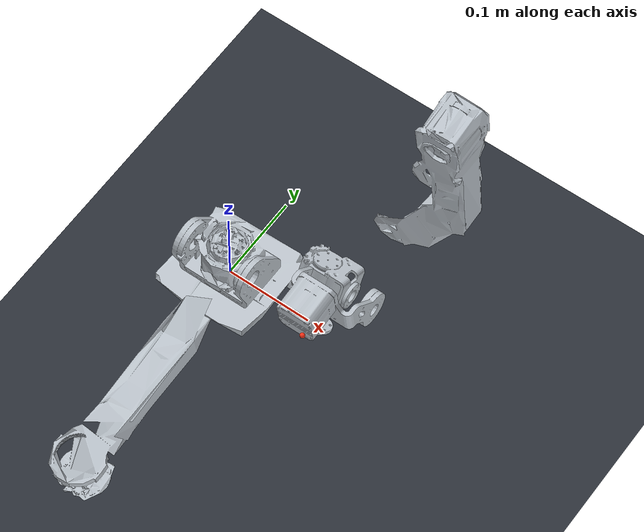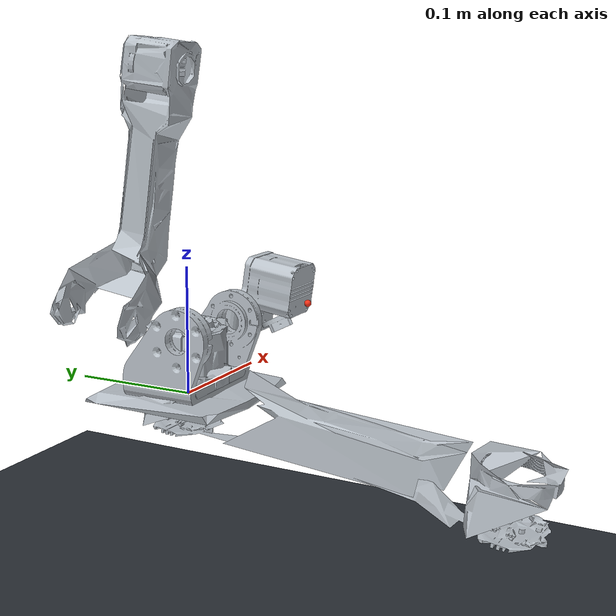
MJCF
<mujoco model="custom_tool4_v1_free_space">
  <compiler angle="radian" inertiafromgeom="false" fusestatic="false" />
  <option timestep="0.001" gravity="0 0 -9.8100000000000005" integrator="implicitfast" />
  <asset>
    <mesh name="base_link" file="../../inputs/processed/meshes/visual/base_link.STL" />
    <mesh name="Link1" file="../../inputs/processed/meshes/visual/Link1.STL" />
    <mesh name="Link2" file="../../inputs/processed/meshes/visual/Link2.STL" />
    <mesh name="Link3" file="../../inputs/processed/meshes/visual/Link3.STL" />
    <mesh name="Link4" file="../../inputs/processed/meshes/visual/Link4.STL" />
    <mesh name="Link5" file="../../inputs/processed/meshes/visual/Link5.STL" />
    <mesh name="Link6" file="../../inputs/processed/meshes/visual/Link6.STL" />
  </asset>
  <worldbody>
    <light pos="0 -1 2" dir="0 0 -1" />
    <geom name="display_floor" type="plane" pos="0 0 -0.22" size="1 1 .01" rgba=".17 .19 .22 1" contype="0" conaffinity="0" />
    <body name="base_link" pos="0 0 0" quat="1 0 0 0">
      <inertial pos="0.0049880381758916799 0.0067405566768687902 -0.073436412944336907" mass="2.02743205550244" fullinertia="0.00301415778826916 0.0043371096763832103 0.00647014029510125 0.00014597451074660199 -8.6669472825640403e-06 -7.2772841433809602e-06" />
      <geom name="visual_base_link" type="mesh" mesh="base_link" contype="0" conaffinity="0" group="1" rgba=".74 .77 .8 1" pos="0 0 0" quat="1 0 0 0" />
      <body name="Link1" pos="0 0 0" quat="-0.70710548251123628 0 0 0.70710807985947355">
        <inertial pos="0.00080175522902964402 0.0089345228227401298 -0.013409982856259901" mass="0.306774615937381" fullinertia="0.00011855149612640801 0.00016275104535737599 0.00014665067559906201 5.0683396447245101e-08 4.2698237358140097e-08 2.1569755740945602e-06" />
        <geom name="visual_Link1" type="mesh" mesh="Link1" contype="0" conaffinity="0" group="1" rgba=".74 .77 .8 1" pos="0 0 0" quat="1 0 0 0" />
        <joint name="Joint1" type="hinge" axis="0 0 1" limited="true" range="-3.14 3.14" damping="0" frictionloss="0" armature="0" />
        <body name="Link2" pos="0 0 0" quat="-0.0493292480220755 -0.049323884793688141 0.70538569103490145 -0.70538273764081449">
          <inertial pos="0.129699536412927 0.000214353234915809 -0.010843386770700099" mass="0.721759057107543" fullinertia="0.00034589074277047703 0.00153215070496463 0.0017162895634722599 -2.88777578221709e-06 -2.4532753118774698e-05 4.7036069603608098e-07" />
          <geom name="visual_Link2" type="mesh" mesh="Link2" contype="0" conaffinity="0" group="1" rgba=".74 .77 .8 1" pos="0 0 0" quat="1 0 0 0" />
          <joint name="Joint2" type="hinge" axis="0 0 -1" limited="true" range="-3.14 3.14" damping="0" frictionloss="0" armature="0" />
          <body name="Link3" pos="0.17100000000000001 0 -0.11285000000000001" quat="-2.5973434669646147e-06 -0.70710548250646599 0.70710807985470336 2.5973530075574148e-06">
            <inertial pos="-0.00033029347703261702 -0.0080478814196509006 -0.0071932839505722502" mass="0.420117391139394" fullinertia="0.00024841243532890199 0.00033284842346646698 0.00020086014059134599 7.3145128594035301e-07 -2.1760998000211101e-06 -1.5279110856018799e-05" />
            <geom name="visual_Link3" type="mesh" mesh="Link3" contype="0" conaffinity="0" group="1" rgba=".74 .77 .8 1" pos="0 0 0" quat="1 0 0 0" />
            <joint name="Joint3" type="hinge" axis="0 0 1" limited="true" range="-3.14 3.14" damping="0" frictionloss="0" armature="0" />
            <body name="Link4" pos="0 0.1235 0" quat="-0.70710548251123628 0.70710807985947355 0 0">
              <inertial pos="-0.0030222491477731 -0.010701110797292201 -0.027946367813552801" mass="0.50785106458491" fullinertia="0.000375005935526406 0.00048199678947339199 0.00026126560559408302 6.6706453189151704e-06 -5.8328284935138799e-05 -2.08888964797331e-05" />
              <geom name="visual_Link4" type="mesh" mesh="Link4" contype="0" conaffinity="0" group="1" rgba=".74 .77 .8 1" pos="0 0 0" quat="1 0 0 0" />
              <joint name="Joint4" type="hinge" axis="0 0 1" limited="true" range="-3.14 3.14" damping="0" frictionloss="0" armature="0" />
              <body name="Link5" pos="0 -0.01 0" quat="0.67437797838336755 0.6743804555165489 0.21263232508019675 -0.21263310612377287">
                <inertial pos="0.00037565982886078603 0.059453843932993397 -0.0035337801585084401" mass="0.363031251058654" fullinertia="0.00017418530556987199 0.00022823810930779799 0.00017511053383909299 3.7029798697673299e-07 2.7870653026132299e-06 1.44896439039514e-05" />
                <geom name="visual_Link5" type="mesh" mesh="Link5" contype="0" conaffinity="0" group="1" rgba=".74 .77 .8 1" pos="0 0 0" quat="1 0 0 0" />
                <joint name="Joint5" type="hinge" axis="0 0 -1" limited="true" range="-3.14 3.14" damping="0" frictionloss="0" armature="0" />
                <body name="Link6" pos="0 0.067500000000000004 0" quat="-2.5973434669646147e-06 -2.5973530075574148e-06 0.70710807985470336 0.70710548250646599">
                  <inertial pos="1.7550234598928701e-09 -3.9215385105873e-10 0.023209724397309599" mass="0.0427877844573265" fullinertia="2.0439979348195898e-05 2.0439975419713302e-05 3.2029356790928902e-05 -3.5360814705513899e-06 -2.2544963696952201e-12 2.17424275312347e-13" />
                  <geom name="visual_Link6" type="mesh" mesh="Link6" contype="0" conaffinity="0" group="1" rgba=".74 .77 .8 1" pos="0 0 0" quat="1 0 0 0" />
                  <joint name="Joint6" type="hinge" axis="0 0 1" limited="true" range="-3.14 3.14" damping="0" frictionloss="0" armature="0" />
                  <body name="Link_tool" pos="0 0 0.032750000000000001" quat="0.94136338434979161 0.01737517576008013 0.049065858617549779 -0.33335510104231997">
                    <site name="tool_site" pos="0 0 0" size=".003" rgba="1 .2 .1 1" />
                  </body>
                </body>
              </body>
            </body>
          </body>
        </body>
      </body>
    </body>
  </worldbody>
  <actuator>
    <motor name="motor_Joint1" joint="Joint1" gear="1" ctrllimited="true" ctrlrange="-10 10" forcelimited="true" forcerange="-10 10" />
    <motor name="motor_Joint2" joint="Joint2" gear="1" ctrllimited="true" ctrlrange="-10 10" forcelimited="true" forcerange="-10 10" />
    <motor name="motor_Joint3" joint="Joint3" gear="1" ctrllimited="true" ctrlrange="-10 10" forcelimited="true" forcerange="-10 10" />
    <motor name="motor_Joint4" joint="Joint4" gear="1" ctrllimited="true" ctrlrange="-10 10" forcelimited="true" forcerange="-10 10" />
    <motor name="motor_Joint5" joint="Joint5" gear="1" ctrllimited="true" ctrlrange="-10 10" forcelimited="true" forcerange="-10 10" />
    <motor name="motor_Joint6" joint="Joint6" gear="1" ctrllimited="true" ctrlrange="-10 10" forcelimited="true" forcerange="-10 10" />
  </actuator>
  <sensor>
    <jointpos name="pos_Joint1" joint="Joint1" />
    <jointvel name="vel_Joint1" joint="Joint1" />
    <actuatorfrc name="tau_Joint1" actuator="motor_Joint1" />
    <jointpos name="pos_Joint2" joint="Joint2" />
    <jointvel name="vel_Joint2" joint="Joint2" />
    <actuatorfrc name="tau_Joint2" actuator="motor_Joint2" />
    <jointpos name="pos_Joint3" joint="Joint3" />
    <jointvel name="vel_Joint3" joint="Joint3" />
    <actuatorfrc name="tau_Joint3" actuator="motor_Joint3" />
    <jointpos name="pos_Joint4" joint="Joint4" />
    <jointvel name="vel_Joint4" joint="Joint4" />
    <actuatorfrc name="tau_Joint4" actuator="motor_Joint4" />
    <jointpos name="pos_Joint5" joint="Joint5" />
    <jointvel name="vel_Joint5" joint="Joint5" />
    <actuatorfrc name="tau_Joint5" actuator="motor_Joint5" />
    <jointpos name="pos_Joint6" joint="Joint6" />
    <jointvel name="vel_Joint6" joint="Joint6" />
    <actuatorfrc name="tau_Joint6" actuator="motor_Joint6" />
  </sensor>
  <keyframe>
    <key name="simulation_start" qpos="0.29999999999999999 -0.69999999999999996 0.80000000000000004 0.40000000000000002 -0.5 0.20000000000000001" />
  </keyframe>
</mujoco>
